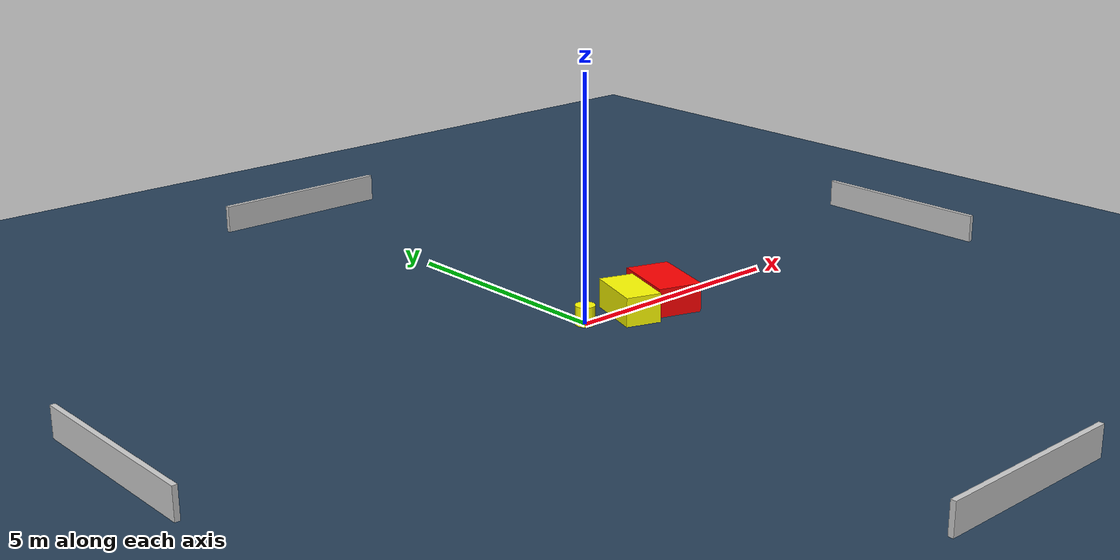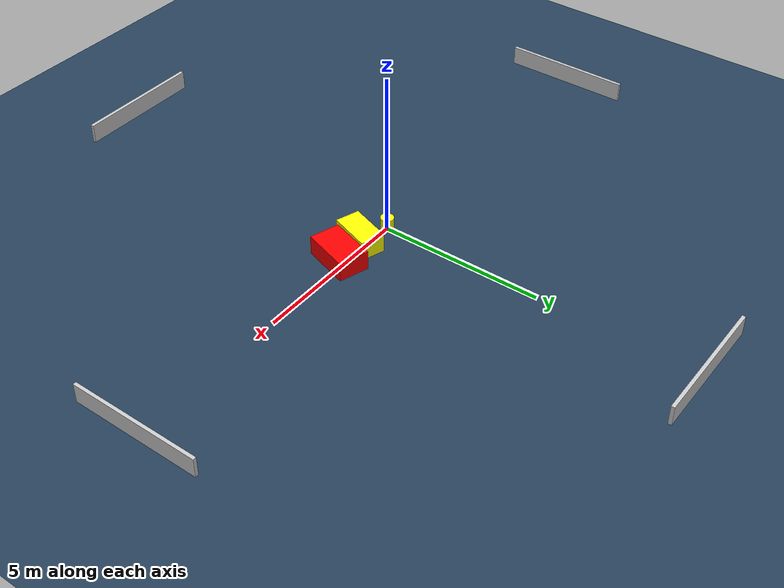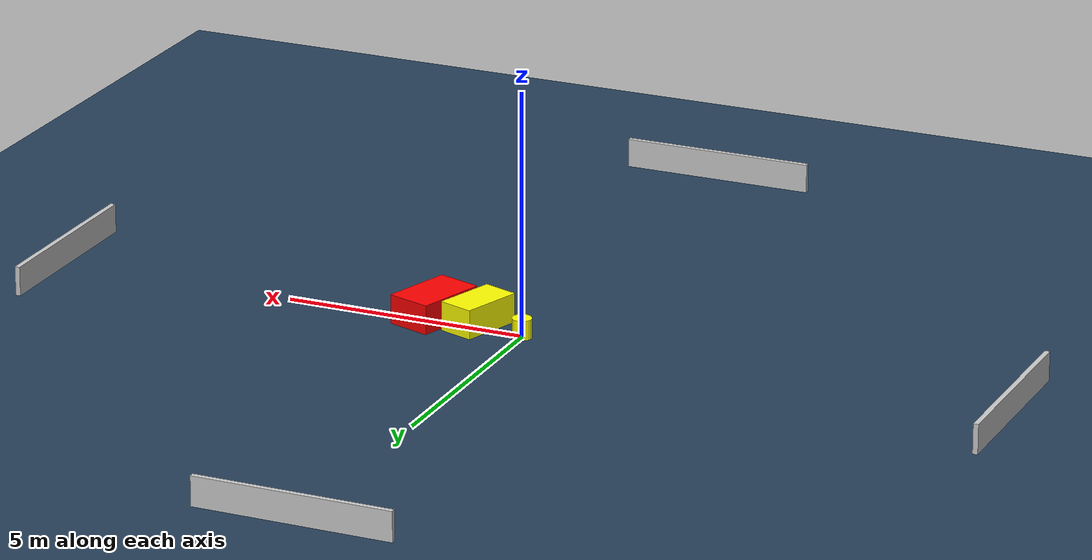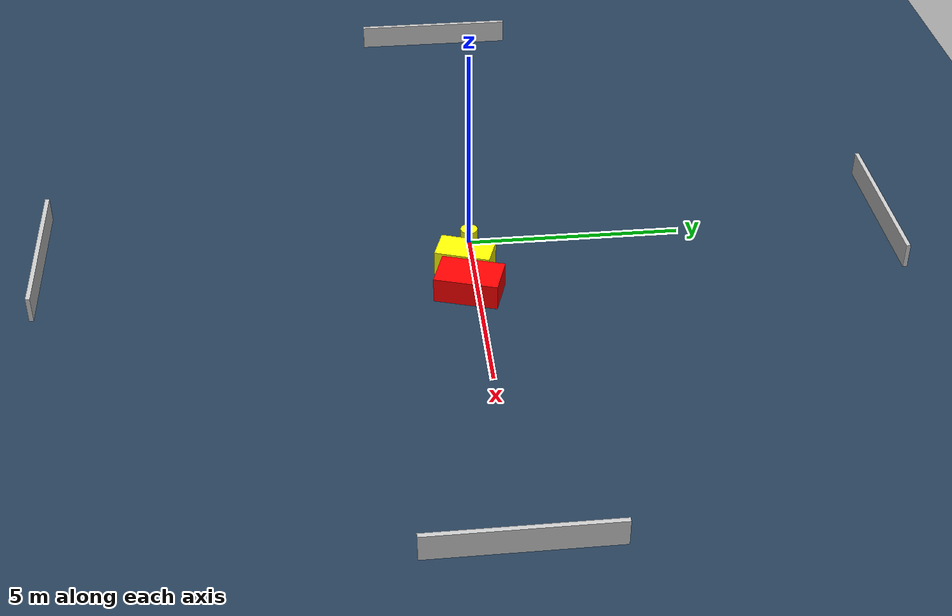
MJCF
<?xml version="1.0" ?>
<mujoco model="generated_environment">
  <option timestep="0.01" integrator="RK4" cone="elliptic"/>
  <default>
    <geom density="1"/>
  </default>
  <asset>
    <texture builtin="gradient" height="3072" name="skybox" rgb1="0.3 0.5 0.7" rgb2="0 0 0" type="skybox" width="512"/>
    <texture builtin="checker" height="300" name="groundplane" rgb1="0.2 0.3 0.4" rgb2="0.1 0.2 0.3" type="2d" width="300"/>
    <material name="groundplane" reflectance="0.2" texrepeat="5 5" texture="groundplane"/>
  </asset>
  <worldbody>
    <light dir="0 0 -1" directional="true" pos="0 0 1.5"/>
    <geom condim="3" friction="0.5 0.005 0.001" material="groundplane" name="floor" pos="0 0 0" size="0 0 0.05" type="plane"/>
    <body name="walls">
      <geom name="wall_1" condim="4" pos="-10.0 0.0 0.3" rgba="0.800000011920929 0.800000011920929 0.800000011920929 1.0" size="0.05 2.0 0.3" type="box"/>
      <geom name="wall_2" condim="4" pos="10.0 0.0 0.3" rgba="0.800000011920929 0.800000011920929 0.800000011920929 1.0" size="0.05 2.0 0.3" type="box"/>
      <geom name="wall_3" condim="4" pos="0.0 -10.0 0.3" rgba="0.800000011920929 0.800000011920929 0.800000011920929 1.0" size="2.0 0.05 0.3" type="box"/>
      <geom name="wall_4" condim="4" pos="0.0 10.0 0.3" rgba="0.800000011920929 0.800000011920929 0.800000011920929 1.0" size="2.0 0.05 0.3" type="box"/>
    </body>
    <body name="robot">
      <joint name="joint_x" type="slide" pos="0 0 0" axis="1 0 0"/>
      <joint name="joint_y" type="slide" pos="0 0 0" axis="0 1 0"/>
      <geom name="robot" type="cylinder" pos="0.0 0.0 0.2" size="0.2 0.2 0.0" mass="5.0" friction="1.0 0.005 0.0001" condim="4" rgba="1.0 1.0 0.0 1.0"/>
    </body>
    <body name="obstacle_1_movable">
      <geom name="obstacle_1_movable" condim="4" pos="1.0182487160017988 -0.19290166670296707 0.3" euler="0 0 161.45524153106584" friction="0.0 0.005 0.001" rgba="1.0 1.0 0.0 1.0" size="0.37096656119337224 0.6462291612407249 0.3" type="box" mass="0.1"/>
      <joint type="free"/>
    </body>
    <body name="obstacle_2_static">
      <geom name="obstacle_2_static" condim="4" pos="1.9657225389668191 -0.19152841443727067 0.3" euler="0 0 252.26011870264352" friction="0.0 0.005 0.001" rgba="1.0 0.0 0.0 1.0" size="0.735642546721454 0.4643299813760474 0.3" type="box"/>
    </body>
  </worldbody>
  <actuator>
    <motor name="actuator_x" joint="joint_x" gear="1" ctrlrange="-1 1"/>
    <motor name="actuator_y" joint="joint_y" gear="1" ctrlrange="-1 1"/>
  </actuator>
</mujoco>
